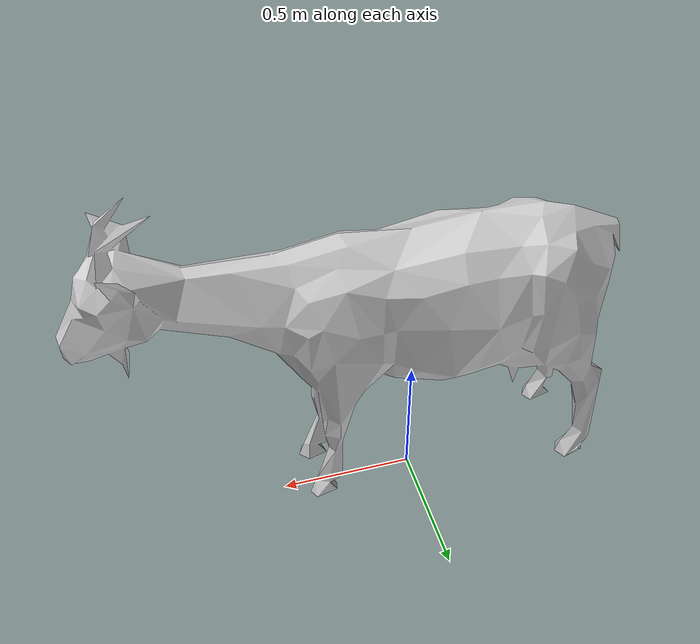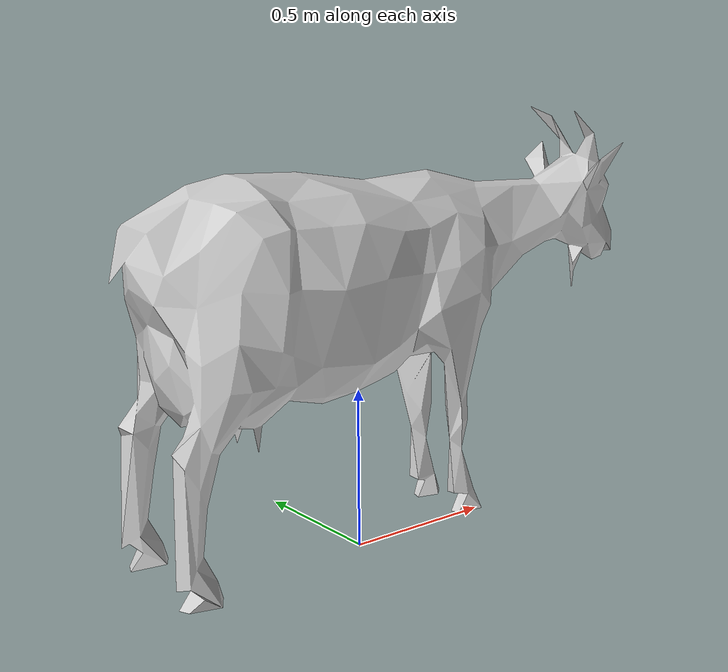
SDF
<?xml version="1.0"?>
<sdf version="1.4">
  <model name="goat_tdf">
    <static>true</static>
    <link name="body">
      <collision name="collision">
        <geometry>
          <mesh>
            <uri>model://goat_tdf/meshes/goat.dae</uri>
          </mesh>
        </geometry>
      </collision>
      <visual name="visual">
        <geometry>
          <mesh><uri>model://goat_tdf/meshes/goat.dae</uri></mesh>
        </geometry>
      </visual>
    </link>
  </model>
</sdf>
